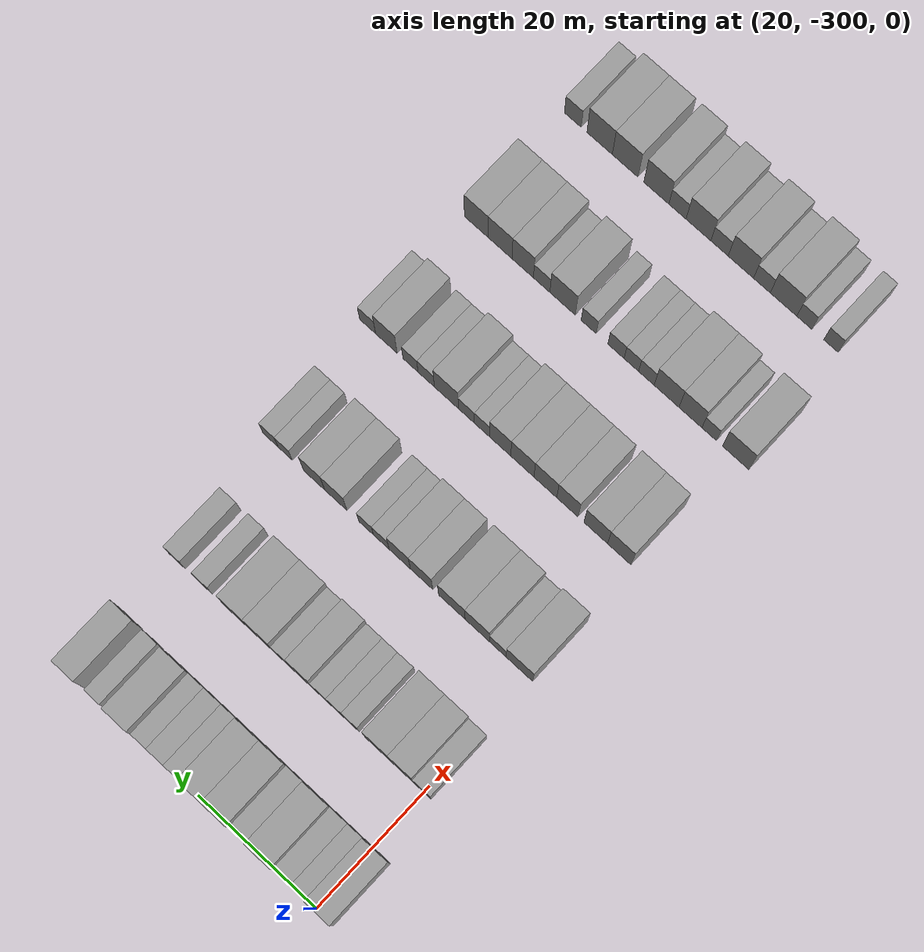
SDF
<sdf version="1.6">
 <world name="default">
  <model name="building_13">
   <static>1</static>
   <pose>25.0000 -300.7905 0 0.000000 0.000000 0.000000</pose>
   <link name="link">
    <pose>0 0 4.50 0 0 0</pose>
    <collision name="collision"><geometry><box><size>10.0000 4.1984 9.0000</size></box></geometry></collision>
    <visual name="visual">
     <cast_shadows>0</cast_shadows>
     <geometry><box><size>10.0000 4.1984 9.0000</size></box></geometry>
     <material>
      <script>
       <uri>model://grey_wall/materials/scripts</uri>
       <uri>model://grey_wall/materials/textures</uri>
       <name>vrc/grey_wall</name>
      </script>
     </material>
    </visual>
   </link>
  </model>
  <model name="building_14">
   <static>1</static>
   <pose>25.0000 -297.3987 0 0.000000 0.000000 0.000000</pose>
   <link name="link">
    <pose>0 0 3.00 0 0 0</pose>
    <collision name="collision"><geometry><box><size>10.0000 2.5852 6.0000</size></box></geometry></collision>
    <visual name="visual">
     <cast_shadows>0</cast_shadows>
     <geometry><box><size>10.0000 2.5852 6.0000</size></box></geometry>
     <material>
      <script>
       <uri>model://grey_wall/materials/scripts</uri>
       <uri>model://grey_wall/materials/textures</uri>
       <name>vrc/grey_wall</name>
      </script>
     </material>
    </visual>
   </link>
  </model>
  <model name="building_15">
   <static>1</static>
   <pose>25.0000 -294.6609 0 0.000000 0.000000 0.000000</pose>
   <link name="link">
    <pose>0 0 3.00 0 0 0</pose>
    <collision name="collision"><geometry><box><size>10.0000 2.8902 6.0000</size></box></geometry></collision>
    <visual name="visual">
     <cast_shadows>0</cast_shadows>
     <geometry><box><size>10.0000 2.8902 6.0000</size></box></geometry>
     <material>
      <script>
       <uri>model://grey_wall/materials/scripts</uri>
       <uri>model://grey_wall/materials/textures</uri>
       <name>vrc/grey_wall</name>
      </script>
     </material>
    </visual>
   </link>
  </model>
  <model name="building_16">
   <static>1</static>
   <pose>25.0000 -291.0888 0 0.000000 0.000000 0.000000</pose>
   <link name="link">
    <pose>0 0 4.50 0 0 0</pose>
    <collision name="collision"><geometry><box><size>10.0000 4.2540 9.0000</size></box></geometry></collision>
    <visual name="visual">
     <cast_shadows>0</cast_shadows>
     <geometry><box><size>10.0000 4.2540 9.0000</size></box></geometry>
     <material>
      <script>
       <uri>model://grey_wall/materials/scripts</uri>
       <uri>model://grey_wall/materials/textures</uri>
       <name>vrc/grey_wall</name>
      </script>
     </material>
    </visual>
   </link>
  </model>
  <model name="building_17">
   <static>1</static>
   <pose>25.0000 -287.4622 0 0.000000 0.000000 0.000000</pose>
   <link name="link">
    <pose>0 0 3.00 0 0 0</pose>
    <collision name="collision"><geometry><box><size>10.0000 2.9994 6.0000</size></box></geometry></collision>
    <visual name="visual">
     <cast_shadows>0</cast_shadows>
     <geometry><box><size>10.0000 2.9994 6.0000</size></box></geometry>
     <material>
      <script>
       <uri>model://grey_wall/materials/scripts</uri>
       <uri>model://grey_wall/materials/textures</uri>
       <name>vrc/grey_wall</name>
      </script>
     </material>
    </visual>
   </link>
  </model>
  <model name="building_18">
   <static>1</static>
   <pose>25.0000 -283.9113 0 0.000000 0.000000 0.000000</pose>
   <link name="link">
    <pose>0 0 4.50 0 0 0</pose>
    <collision name="collision"><geometry><box><size>10.0000 4.1024 9.0000</size></box></geometry></collision>
    <visual name="visual">
     <cast_shadows>0</cast_shadows>
     <geometry><box><size>10.0000 4.1024 9.0000</size></box></geometry>
     <material>
      <script>
       <uri>model://grey_wall/materials/scripts</uri>
       <uri>model://grey_wall/materials/textures</uri>
       <name>vrc/grey_wall</name>
      </script>
     </material>
    </visual>
   </link>
  </model>
  <model name="building_19">
   <static>1</static>
   <pose>25.0000 -279.8644 0 0.000000 0.000000 0.000000</pose>
   <link name="link">
    <pose>0 0 4.50 0 0 0</pose>
    <collision name="collision"><geometry><box><size>10.0000 3.9914 9.0000</size></box></geometry></collision>
    <visual name="visual">
     <cast_shadows>0</cast_shadows>
     <geometry><box><size>10.0000 3.9914 9.0000</size></box></geometry>
     <material>
      <script>
       <uri>model://grey_wall/materials/scripts</uri>
       <uri>model://grey_wall/materials/textures</uri>
       <name>vrc/grey_wall</name>
      </script>
     </material>
    </visual>
   </link>
  </model>
  <model name="building_20">
   <static>1</static>
   <pose>25.0000 -276.5070 0 0.000000 0.000000 0.000000</pose>
   <link name="link">
    <pose>0 0 3.00 0 0 0</pose>
    <collision name="collision"><geometry><box><size>10.0000 2.7232 6.0000</size></box></geometry></collision>
    <visual name="visual">
     <cast_shadows>0</cast_shadows>
     <geometry><box><size>10.0000 2.7232 6.0000</size></box></geometry>
     <material>
      <script>
       <uri>model://grey_wall/materials/scripts</uri>
       <uri>model://grey_wall/materials/textures</uri>
       <name>vrc/grey_wall</name>
      </script>
     </material>
    </visual>
   </link>
  </model>
  <model name="building_21">
   <static>1</static>
   <pose>25.0000 -273.6886 0 0.000000 0.000000 0.000000</pose>
   <link name="link">
    <pose>0 0 3.00 0 0 0</pose>
    <collision name="collision"><geometry><box><size>10.0000 2.9136 6.0000</size></box></geometry></collision>
    <visual name="visual">
     <cast_shadows>0</cast_shadows>
     <geometry><box><size>10.0000 2.9136 6.0000</size></box></geometry>
     <material>
      <script>
       <uri>model://grey_wall/materials/scripts</uri>
       <uri>model://grey_wall/materials/textures</uri>
       <name>vrc/grey_wall</name>
      </script>
     </material>
    </visual>
   </link>
  </model>
  <model name="building_22">
   <static>1</static>
   <pose>25.0000 -270.9212 0 0.000000 0.000000 0.000000</pose>
   <link name="link">
    <pose>0 0 3.00 0 0 0</pose>
    <collision name="collision"><geometry><box><size>10.0000 2.6211 6.0000</size></box></geometry></collision>
    <visual name="visual">
     <cast_shadows>0</cast_shadows>
     <geometry><box><size>10.0000 2.6211 6.0000</size></box></geometry>
     <material>
      <script>
       <uri>model://grey_wall/materials/scripts</uri>
       <uri>model://grey_wall/materials/textures</uri>
       <name>vrc/grey_wall</name>
      </script>
     </material>
    </visual>
   </link>
  </model>
  <model name="building_23">
   <static>1</static>
   <pose>25.0000 -267.5183 0 0.000000 0.000000 0.000000</pose>
   <link name="link">
    <pose>0 0 4.50 0 0 0</pose>
    <collision name="collision"><geometry><box><size>10.0000 4.1848 9.0000</size></box></geometry></collision>
    <visual name="visual">
     <cast_shadows>0</cast_shadows>
     <geometry><box><size>10.0000 4.1848 9.0000</size></box></geometry>
     <material>
      <script>
       <uri>model://grey_wall/materials/scripts</uri>
       <uri>model://grey_wall/materials/textures</uri>
       <name>vrc/grey_wall</name>
      </script>
     </material>
    </visual>
   </link>
  </model>
  <model name="building_24">
   <static>1</static>
   <pose>25.0000 -263.1053 0 0.000000 0.000000 0.000000</pose>
   <link name="link">
    <pose>0 0 3.00 0 0 0</pose>
    <collision name="collision"><geometry><box><size>10.0000 2.6412 6.0000</size></box></geometry></collision>
    <visual name="visual">
     <cast_shadows>0</cast_shadows>
     <geometry><box><size>10.0000 2.6412 6.0000</size></box></geometry>
     <material>
      <script>
       <uri>model://grey_wall/materials/scripts</uri>
       <uri>model://grey_wall/materials/textures</uri>
       <name>vrc/grey_wall</name>
      </script>
     </material>
    </visual>
   </link>
  </model>
  <model name="building_25">
   <static>1</static>
   <pose>25.0000 -258.9148 0 0.000000 0.000000 0.000000</pose>
   <link name="link">
    <pose>0 0 4.50 0 0 0</pose>
    <collision name="collision"><geometry><box><size>10.0000 3.7397 9.0000</size></box></geometry></collision>
    <visual name="visual">
     <cast_shadows>0</cast_shadows>
     <geometry><box><size>10.0000 3.7397 9.0000</size></box></geometry>
     <material>
      <script>
       <uri>model://grey_wall/materials/scripts</uri>
       <uri>model://grey_wall/materials/textures</uri>
       <name>vrc/grey_wall</name>
      </script>
     </material>
    </visual>
   </link>
  </model>
  <model name="building_182">
   <static>1</static>
   <pose>44.0000 -299.7260 0 0.000000 0.000000 0.000000</pose>
   <link name="link">
    <pose>0 0 3.00 0 0 0</pose>
    <collision name="collision"><geometry><box><size>10.0000 2.9644 6.0000</size></box></geometry></collision>
    <visual name="visual">
     <cast_shadows>0</cast_shadows>
     <geometry><box><size>10.0000 2.9644 6.0000</size></box></geometry>
     <material>
      <script>
       <uri>model://grey_wall/materials/scripts</uri>
       <uri>model://grey_wall/materials/textures</uri>
       <name>vrc/grey_wall</name>
      </script>
     </material>
    </visual>
   </link>
  </model>
  <model name="building_183">
   <static>1</static>
   <pose>44.0000 -296.2830 0 0.000000 0.000000 0.000000</pose>
   <link name="link">
    <pose>0 0 4.50 0 0 0</pose>
    <collision name="collision"><geometry><box><size>10.0000 3.9217 9.0000</size></box></geometry></collision>
    <visual name="visual">
     <cast_shadows>0</cast_shadows>
     <geometry><box><size>10.0000 3.9217 9.0000</size></box></geometry>
     <material>
      <script>
       <uri>model://grey_wall/materials/scripts</uri>
       <uri>model://grey_wall/materials/textures</uri>
       <name>vrc/grey_wall</name>
      </script>
     </material>
    </visual>
   </link>
  </model>
  <model name="building_184">
   <static>1</static>
   <pose>44.0000 -292.2314 0 0.000000 0.000000 0.000000</pose>
   <link name="link">
    <pose>0 0 4.50 0 0 0</pose>
    <collision name="collision"><geometry><box><size>10.0000 4.1815 9.0000</size></box></geometry></collision>
    <visual name="visual">
     <cast_shadows>0</cast_shadows>
     <geometry><box><size>10.0000 4.1815 9.0000</size></box></geometry>
     <material>
      <script>
       <uri>model://grey_wall/materials/scripts</uri>
       <uri>model://grey_wall/materials/textures</uri>
       <name>vrc/grey_wall</name>
      </script>
     </material>
    </visual>
   </link>
  </model>
  <model name="building_185">
   <static>1</static>
   <pose>44.0000 -287.8193 0 0.000000 0.000000 0.000000</pose>
   <link name="link">
    <pose>0 0 3.00 0 0 0</pose>
    <collision name="collision"><geometry><box><size>10.0000 2.6428 6.0000</size></box></geometry></collision>
    <visual name="visual">
     <cast_shadows>0</cast_shadows>
     <geometry><box><size>10.0000 2.6428 6.0000</size></box></geometry>
     <material>
      <script>
       <uri>model://grey_wall/materials/scripts</uri>
       <uri>model://grey_wall/materials/textures</uri>
       <name>vrc/grey_wall</name>
      </script>
     </material>
    </visual>
   </link>
  </model>
  <model name="building_186">
   <static>1</static>
   <pose>44.0000 -285.2266 0 0.000000 0.000000 0.000000</pose>
   <link name="link">
    <pose>0 0 3.00 0 0 0</pose>
    <collision name="collision"><geometry><box><size>10.0000 2.5427 6.0000</size></box></geometry></collision>
    <visual name="visual">
     <cast_shadows>0</cast_shadows>
     <geometry><box><size>10.0000 2.5427 6.0000</size></box></geometry>
     <material>
      <script>
       <uri>model://grey_wall/materials/scripts</uri>
       <uri>model://grey_wall/materials/textures</uri>
       <name>vrc/grey_wall</name>
      </script>
     </material>
    </visual>
   </link>
  </model>
  <model name="building_187">
   <static>1</static>
   <pose>44.0000 -282.6139 0 0.000000 0.000000 0.000000</pose>
   <link name="link">
    <pose>0 0 3.00 0 0 0</pose>
    <collision name="collision"><geometry><box><size>10.0000 2.6825 6.0000</size></box></geometry></collision>
    <visual name="visual">
     <cast_shadows>0</cast_shadows>
     <geometry><box><size>10.0000 2.6825 6.0000</size></box></geometry>
     <material>
      <script>
       <uri>model://grey_wall/materials/scripts</uri>
       <uri>model://grey_wall/materials/textures</uri>
       <name>vrc/grey_wall</name>
      </script>
     </material>
    </visual>
   </link>
  </model>
  <model name="building_188">
   <static>1</static>
   <pose>44.0000 -279.3797 0 0.000000 0.000000 0.000000</pose>
   <link name="link">
    <pose>0 0 4.50 0 0 0</pose>
    <collision name="collision"><geometry><box><size>10.0000 3.7860 9.0000</size></box></geometry></collision>
    <visual name="visual">
     <cast_shadows>0</cast_shadows>
     <geometry><box><size>10.0000 3.7860 9.0000</size></box></geometry>
     <material>
      <script>
       <uri>model://grey_wall/materials/scripts</uri>
       <uri>model://grey_wall/materials/textures</uri>
       <name>vrc/grey_wall</name>
      </script>
     </material>
    </visual>
   </link>
  </model>
  <model name="building_189">
   <static>1</static>
   <pose>44.0000 -276.0984 0 0.000000 0.000000 0.000000</pose>
   <link name="link">
    <pose>0 0 3.00 0 0 0</pose>
    <collision name="collision"><geometry><box><size>10.0000 2.7766 6.0000</size></box></geometry></collision>
    <visual name="visual">
     <cast_shadows>0</cast_shadows>
     <geometry><box><size>10.0000 2.7766 6.0000</size></box></geometry>
     <material>
      <script>
       <uri>model://grey_wall/materials/scripts</uri>
       <uri>model://grey_wall/materials/textures</uri>
       <name>vrc/grey_wall</name>
      </script>
     </material>
    </visual>
   </link>
  </model>
  <model name="building_190">
   <static>1</static>
   <pose>44.0000 -272.5750 0 0.000000 0.000000 0.000000</pose>
   <link name="link">
    <pose>0 0 4.50 0 0 0</pose>
    <collision name="collision"><geometry><box><size>10.0000 4.2703 9.0000</size></box></geometry></collision>
    <visual name="visual">
     <cast_shadows>0</cast_shadows>
     <geometry><box><size>10.0000 4.2703 9.0000</size></box></geometry>
     <material>
      <script>
       <uri>model://grey_wall/materials/scripts</uri>
       <uri>model://grey_wall/materials/textures</uri>
       <name>vrc/grey_wall</name>
      </script>
     </material>
    </visual>
   </link>
  </model>
  <model name="building_191">
   <static>1</static>
   <pose>44.0000 -268.2742 0 0.000000 0.000000 0.000000</pose>
   <link name="link">
    <pose>0 0 4.50 0 0 0</pose>
    <collision name="collision"><geometry><box><size>10.0000 4.3313 9.0000</size></box></geometry></collision>
    <visual name="visual">
     <cast_shadows>0</cast_shadows>
     <geometry><box><size>10.0000 4.3313 9.0000</size></box></geometry>
     <material>
      <script>
       <uri>model://grey_wall/materials/scripts</uri>
       <uri>model://grey_wall/materials/textures</uri>
       <name>vrc/grey_wall</name>
      </script>
     </material>
    </visual>
   </link>
  </model>
  <model name="building_192">
   <static>1</static>
   <pose>44.0000 -262.7635 0 0.000000 0.000000 0.000000</pose>
   <link name="link">
    <pose>0 0 3.00 0 0 0</pose>
    <collision name="collision"><geometry><box><size>10.0000 2.6901 6.0000</size></box></geometry></collision>
    <visual name="visual">
     <cast_shadows>0</cast_shadows>
     <geometry><box><size>10.0000 2.6901 6.0000</size></box></geometry>
     <material>
      <script>
       <uri>model://grey_wall/materials/scripts</uri>
       <uri>model://grey_wall/materials/textures</uri>
       <name>vrc/grey_wall</name>
      </script>
     </material>
    </visual>
   </link>
  </model>
  <model name="building_193">
   <static>1</static>
   <pose>44.0000 -258.0133 0 0.000000 0.000000 0.000000</pose>
   <link name="link">
    <pose>0 0 3.00 0 0 0</pose>
    <collision name="collision"><geometry><box><size>10.0000 2.8103 6.0000</size></box></geometry></collision>
    <visual name="visual">
     <cast_shadows>0</cast_shadows>
     <geometry><box><size>10.0000 2.8103 6.0000</size></box></geometry>
     <material>
      <script>
       <uri>model://grey_wall/materials/scripts</uri>
       <uri>model://grey_wall/materials/textures</uri>
       <name>vrc/grey_wall</name>
      </script>
     </material>
    </visual>
   </link>
  </model>
  <model name="building_359">
   <static>1</static>
   <pose>63.0000 -298.3447 0 0.000000 0.000000 0.000000</pose>
   <link name="link">
    <pose>0 0 4.50 0 0 0</pose>
    <collision name="collision"><geometry><box><size>10.0000 4.4631 9.0000</size></box></geometry></collision>
    <visual name="visual">
     <cast_shadows>0</cast_shadows>
     <geometry><box><size>10.0000 4.4631 9.0000</size></box></geometry>
     <material>
      <script>
       <uri>model://grey_wall/materials/scripts</uri>
       <uri>model://grey_wall/materials/textures</uri>
       <name>vrc/grey_wall</name>
      </script>
     </material>
    </visual>
   </link>
  </model>
  <model name="building_360">
   <static>1</static>
   <pose>63.0000 -294.7150 0 0.000000 0.000000 0.000000</pose>
   <link name="link">
    <pose>0 0 3.00 0 0 0</pose>
    <collision name="collision"><geometry><box><size>10.0000 2.7962 6.0000</size></box></geometry></collision>
    <visual name="visual">
     <cast_shadows>0</cast_shadows>
     <geometry><box><size>10.0000 2.7962 6.0000</size></box></geometry>
     <material>
      <script>
       <uri>model://grey_wall/materials/scripts</uri>
       <uri>model://grey_wall/materials/textures</uri>
       <name>vrc/grey_wall</name>
      </script>
     </material>
    </visual>
   </link>
  </model>
  <model name="building_361">
   <static>1</static>
   <pose>63.0000 -291.2730 0 0.000000 0.000000 0.000000</pose>
   <link name="link">
    <pose>0 0 4.50 0 0 0</pose>
    <collision name="collision"><geometry><box><size>10.0000 4.0878 9.0000</size></box></geometry></collision>
    <visual name="visual">
     <cast_shadows>0</cast_shadows>
     <geometry><box><size>10.0000 4.0878 9.0000</size></box></geometry>
     <material>
      <script>
       <uri>model://grey_wall/materials/scripts</uri>
       <uri>model://grey_wall/materials/textures</uri>
       <name>vrc/grey_wall</name>
      </script>
     </material>
    </visual>
   </link>
  </model>
  <model name="building_362">
   <static>1</static>
   <pose>63.0000 -286.9962 0 0.000000 0.000000 0.000000</pose>
   <link name="link">
    <pose>0 0 4.50 0 0 0</pose>
    <collision name="collision"><geometry><box><size>10.0000 4.4658 9.0000</size></box></geometry></collision>
    <visual name="visual">
     <cast_shadows>0</cast_shadows>
     <geometry><box><size>10.0000 4.4658 9.0000</size></box></geometry>
     <material>
      <script>
       <uri>model://grey_wall/materials/scripts</uri>
       <uri>model://grey_wall/materials/textures</uri>
       <name>vrc/grey_wall</name>
      </script>
     </material>
    </visual>
   </link>
  </model>
  <model name="building_363">
   <static>1</static>
   <pose>63.0000 -281.8577 0 0.000000 0.000000 0.000000</pose>
   <link name="link">
    <pose>0 0 4.50 0 0 0</pose>
    <collision name="collision"><geometry><box><size>10.0000 3.8113 9.0000</size></box></geometry></collision>
    <visual name="visual">
     <cast_shadows>0</cast_shadows>
     <geometry><box><size>10.0000 3.8113 9.0000</size></box></geometry>
     <material>
      <script>
       <uri>model://grey_wall/materials/scripts</uri>
       <uri>model://grey_wall/materials/textures</uri>
       <name>vrc/grey_wall</name>
      </script>
     </material>
    </visual>
   </link>
  </model>
  <model name="building_364">
   <static>1</static>
   <pose>63.0000 -278.1359 0 0.000000 0.000000 0.000000</pose>
   <link name="link">
    <pose>0 0 4.50 0 0 0</pose>
    <collision name="collision"><geometry><box><size>10.0000 3.6322 9.0000</size></box></geometry></collision>
    <visual name="visual">
     <cast_shadows>0</cast_shadows>
     <geometry><box><size>10.0000 3.6322 9.0000</size></box></geometry>
     <material>
      <script>
       <uri>model://grey_wall/materials/scripts</uri>
       <uri>model://grey_wall/materials/textures</uri>
       <name>vrc/grey_wall</name>
      </script>
     </material>
    </visual>
   </link>
  </model>
  <model name="building_365">
   <static>1</static>
   <pose>63.0000 -274.9928 0 0.000000 0.000000 0.000000</pose>
   <link name="link">
    <pose>0 0 3.00 0 0 0</pose>
    <collision name="collision"><geometry><box><size>10.0000 2.6540 6.0000</size></box></geometry></collision>
    <visual name="visual">
     <cast_shadows>0</cast_shadows>
     <geometry><box><size>10.0000 2.6540 6.0000</size></box></geometry>
     <material>
      <script>
       <uri>model://grey_wall/materials/scripts</uri>
       <uri>model://grey_wall/materials/textures</uri>
       <name>vrc/grey_wall</name>
      </script>
     </material>
    </visual>
   </link>
  </model>
  <model name="building_366">
   <static>1</static>
   <pose>63.0000 -272.3990 0 0.000000 0.000000 0.000000</pose>
   <link name="link">
    <pose>0 0 3.00 0 0 0</pose>
    <collision name="collision"><geometry><box><size>10.0000 2.5335 6.0000</size></box></geometry></collision>
    <visual name="visual">
     <cast_shadows>0</cast_shadows>
     <geometry><box><size>10.0000 2.5335 6.0000</size></box></geometry>
     <material>
      <script>
       <uri>model://grey_wall/materials/scripts</uri>
       <uri>model://grey_wall/materials/textures</uri>
       <name>vrc/grey_wall</name>
      </script>
     </material>
    </visual>
   </link>
  </model>
  <model name="building_367">
   <static>1</static>
   <pose>63.0000 -267.2105 0 0.000000 0.000000 0.000000</pose>
   <link name="link">
    <pose>0 0 4.50 0 0 0</pose>
    <collision name="collision"><geometry><box><size>10.0000 3.8435 9.0000</size></box></geometry></collision>
    <visual name="visual">
     <cast_shadows>0</cast_shadows>
     <geometry><box><size>10.0000 3.8435 9.0000</size></box></geometry>
     <material>
      <script>
       <uri>model://grey_wall/materials/scripts</uri>
       <uri>model://grey_wall/materials/textures</uri>
       <name>vrc/grey_wall</name>
      </script>
     </material>
    </visual>
   </link>
  </model>
  <model name="building_368">
   <static>1</static>
   <pose>63.0000 -263.4780 0 0.000000 0.000000 0.000000</pose>
   <link name="link">
    <pose>0 0 4.50 0 0 0</pose>
    <collision name="collision"><geometry><box><size>10.0000 3.6215 9.0000</size></box></geometry></collision>
    <visual name="visual">
     <cast_shadows>0</cast_shadows>
     <geometry><box><size>10.0000 3.6215 9.0000</size></box></geometry>
     <material>
      <script>
       <uri>model://grey_wall/materials/scripts</uri>
       <uri>model://grey_wall/materials/textures</uri>
       <name>vrc/grey_wall</name>
      </script>
     </material>
    </visual>
   </link>
  </model>
  <model name="building_369">
   <static>1</static>
   <pose>63.0000 -258.4417 0 0.000000 0.000000 0.000000</pose>
   <link name="link">
    <pose>0 0 3.00 0 0 0</pose>
    <collision name="collision"><geometry><box><size>10.0000 2.4513 6.0000</size></box></geometry></collision>
    <visual name="visual">
     <cast_shadows>0</cast_shadows>
     <geometry><box><size>10.0000 2.4513 6.0000</size></box></geometry>
     <material>
      <script>
       <uri>model://grey_wall/materials/scripts</uri>
       <uri>model://grey_wall/materials/textures</uri>
       <name>vrc/grey_wall</name>
      </script>
     </material>
    </visual>
   </link>
  </model>
  <model name="building_370">
   <static>1</static>
   <pose>63.0000 -255.8940 0 0.000000 0.000000 0.000000</pose>
   <link name="link">
    <pose>0 0 3.00 0 0 0</pose>
    <collision name="collision"><geometry><box><size>10.0000 2.6442 6.0000</size></box></geometry></collision>
    <visual name="visual">
     <cast_shadows>0</cast_shadows>
     <geometry><box><size>10.0000 2.6442 6.0000</size></box></geometry>
     <material>
      <script>
       <uri>model://grey_wall/materials/scripts</uri>
       <uri>model://grey_wall/materials/textures</uri>
       <name>vrc/grey_wall</name>
      </script>
     </material>
    </visual>
   </link>
  </model>
  <model name="building_532">
   <static>1</static>
   <pose>82.0000 -297.7751 0 0.000000 0.000000 0.000000</pose>
   <link name="link">
    <pose>0 0 4.50 0 0 0</pose>
    <collision name="collision"><geometry><box><size>10.0000 3.9373 9.0000</size></box></geometry></collision>
    <visual name="visual">
     <cast_shadows>0</cast_shadows>
     <geometry><box><size>10.0000 3.9373 9.0000</size></box></geometry>
     <material>
      <script>
       <uri>model://grey_wall/materials/scripts</uri>
       <uri>model://grey_wall/materials/textures</uri>
       <name>vrc/grey_wall</name>
      </script>
     </material>
    </visual>
   </link>
  </model>
  <model name="building_533">
   <static>1</static>
   <pose>82.0000 -293.8197 0 0.000000 0.000000 0.000000</pose>
   <link name="link">
    <pose>0 0 4.50 0 0 0</pose>
    <collision name="collision"><geometry><box><size>10.0000 3.9734 9.0000</size></box></geometry></collision>
    <visual name="visual">
     <cast_shadows>0</cast_shadows>
     <geometry><box><size>10.0000 3.9734 9.0000</size></box></geometry>
     <material>
      <script>
       <uri>model://grey_wall/materials/scripts</uri>
       <uri>model://grey_wall/materials/textures</uri>
       <name>vrc/grey_wall</name>
      </script>
     </material>
    </visual>
   </link>
  </model>
  <model name="building_534">
   <static>1</static>
   <pose>82.0000 -289.0314 0 0.000000 0.000000 0.000000</pose>
   <link name="link">
    <pose>0 0 4.50 0 0 0</pose>
    <collision name="collision"><geometry><box><size>10.0000 3.6031 9.0000</size></box></geometry></collision>
    <visual name="visual">
     <cast_shadows>0</cast_shadows>
     <geometry><box><size>10.0000 3.6031 9.0000</size></box></geometry>
     <material>
      <script>
       <uri>model://grey_wall/materials/scripts</uri>
       <uri>model://grey_wall/materials/textures</uri>
       <name>vrc/grey_wall</name>
      </script>
     </material>
    </visual>
   </link>
  </model>
  <model name="building_535">
   <static>1</static>
   <pose>82.0000 -285.2981 0 0.000000 0.000000 0.000000</pose>
   <link name="link">
    <pose>0 0 4.50 0 0 0</pose>
    <collision name="collision"><geometry><box><size>10.0000 3.8634 9.0000</size></box></geometry></collision>
    <visual name="visual">
     <cast_shadows>0</cast_shadows>
     <geometry><box><size>10.0000 3.8634 9.0000</size></box></geometry>
     <material>
      <script>
       <uri>model://grey_wall/materials/scripts</uri>
       <uri>model://grey_wall/materials/textures</uri>
       <name>vrc/grey_wall</name>
      </script>
     </material>
    </visual>
   </link>
  </model>
  <model name="building_536">
   <static>1</static>
   <pose>82.0000 -281.3900 0 0.000000 0.000000 0.000000</pose>
   <link name="link">
    <pose>0 0 4.50 0 0 0</pose>
    <collision name="collision"><geometry><box><size>10.0000 3.9528 9.0000</size></box></geometry></collision>
    <visual name="visual">
     <cast_shadows>0</cast_shadows>
     <geometry><box><size>10.0000 3.9528 9.0000</size></box></geometry>
     <material>
      <script>
       <uri>model://grey_wall/materials/scripts</uri>
       <uri>model://grey_wall/materials/textures</uri>
       <name>vrc/grey_wall</name>
      </script>
     </material>
    </visual>
   </link>
  </model>
  <model name="building_537">
   <static>1</static>
   <pose>82.0000 -277.6038 0 0.000000 0.000000 0.000000</pose>
   <link name="link">
    <pose>0 0 4.50 0 0 0</pose>
    <collision name="collision"><geometry><box><size>10.0000 3.6196 9.0000</size></box></geometry></collision>
    <visual name="visual">
     <cast_shadows>0</cast_shadows>
     <geometry><box><size>10.0000 3.6196 9.0000</size></box></geometry>
     <material>
      <script>
       <uri>model://grey_wall/materials/scripts</uri>
       <uri>model://grey_wall/materials/textures</uri>
       <name>vrc/grey_wall</name>
      </script>
     </material>
    </visual>
   </link>
  </model>
  <model name="building_538">
   <static>1</static>
   <pose>82.0000 -274.4913 0 0.000000 0.000000 0.000000</pose>
   <link name="link">
    <pose>0 0 3.00 0 0 0</pose>
    <collision name="collision"><geometry><box><size>10.0000 2.6055 6.0000</size></box></geometry></collision>
    <visual name="visual">
     <cast_shadows>0</cast_shadows>
     <geometry><box><size>10.0000 2.6055 6.0000</size></box></geometry>
     <material>
      <script>
       <uri>model://grey_wall/materials/scripts</uri>
       <uri>model://grey_wall/materials/textures</uri>
       <name>vrc/grey_wall</name>
      </script>
     </material>
    </visual>
   </link>
  </model>
  <model name="building_539">
   <static>1</static>
   <pose>82.0000 -271.8295 0 0.000000 0.000000 0.000000</pose>
   <link name="link">
    <pose>0 0 3.00 0 0 0</pose>
    <collision name="collision"><geometry><box><size>10.0000 2.7180 6.0000</size></box></geometry></collision>
    <visual name="visual">
     <cast_shadows>0</cast_shadows>
     <geometry><box><size>10.0000 2.7180 6.0000</size></box></geometry>
     <material>
      <script>
       <uri>model://grey_wall/materials/scripts</uri>
       <uri>model://grey_wall/materials/textures</uri>
       <name>vrc/grey_wall</name>
      </script>
     </material>
    </visual>
   </link>
  </model>
  <model name="building_540">
   <static>1</static>
   <pose>82.0000 -268.3888 0 0.000000 0.000000 0.000000</pose>
   <link name="link">
    <pose>0 0 4.50 0 0 0</pose>
    <collision name="collision"><geometry><box><size>10.0000 4.1634 9.0000</size></box></geometry></collision>
    <visual name="visual">
     <cast_shadows>0</cast_shadows>
     <geometry><box><size>10.0000 4.1634 9.0000</size></box></geometry>
     <material>
      <script>
       <uri>model://grey_wall/materials/scripts</uri>
       <uri>model://grey_wall/materials/textures</uri>
       <name>vrc/grey_wall</name>
      </script>
     </material>
    </visual>
   </link>
  </model>
  <model name="building_541">
   <static>1</static>
   <pose>82.0000 -264.8963 0 0.000000 0.000000 0.000000</pose>
   <link name="link">
    <pose>0 0 3.00 0 0 0</pose>
    <collision name="collision"><geometry><box><size>10.0000 2.8217 6.0000</size></box></geometry></collision>
    <visual name="visual">
     <cast_shadows>0</cast_shadows>
     <geometry><box><size>10.0000 2.8217 6.0000</size></box></geometry>
     <material>
      <script>
       <uri>model://grey_wall/materials/scripts</uri>
       <uri>model://grey_wall/materials/textures</uri>
       <name>vrc/grey_wall</name>
      </script>
     </material>
    </visual>
   </link>
  </model>
  <model name="building_542">
   <static>1</static>
   <pose>82.0000 -262.1801 0 0.000000 0.000000 0.000000</pose>
   <link name="link">
    <pose>0 0 3.00 0 0 0</pose>
    <collision name="collision"><geometry><box><size>10.0000 2.6108 6.0000</size></box></geometry></collision>
    <visual name="visual">
     <cast_shadows>0</cast_shadows>
     <geometry><box><size>10.0000 2.6108 6.0000</size></box></geometry>
     <material>
      <script>
       <uri>model://grey_wall/materials/scripts</uri>
       <uri>model://grey_wall/materials/textures</uri>
       <name>vrc/grey_wall</name>
      </script>
     </material>
    </visual>
   </link>
  </model>
  <model name="building_543">
   <static>1</static>
   <pose>82.0000 -257.9991 0 0.000000 0.000000 0.000000</pose>
   <link name="link">
    <pose>0 0 4.50 0 0 0</pose>
    <collision name="collision"><geometry><box><size>10.0000 3.7512 9.0000</size></box></geometry></collision>
    <visual name="visual">
     <cast_shadows>0</cast_shadows>
     <geometry><box><size>10.0000 3.7512 9.0000</size></box></geometry>
     <material>
      <script>
       <uri>model://grey_wall/materials/scripts</uri>
       <uri>model://grey_wall/materials/textures</uri>
       <name>vrc/grey_wall</name>
      </script>
     </material>
    </visual>
   </link>
  </model>
  <model name="building_544">
   <static>1</static>
   <pose>82.0000 -254.7356 0 0.000000 0.000000 0.000000</pose>
   <link name="link">
    <pose>0 0 3.00 0 0 0</pose>
    <collision name="collision"><geometry><box><size>10.0000 2.7759 6.0000</size></box></geometry></collision>
    <visual name="visual">
     <cast_shadows>0</cast_shadows>
     <geometry><box><size>10.0000 2.7759 6.0000</size></box></geometry>
     <material>
      <script>
       <uri>model://grey_wall/materials/scripts</uri>
       <uri>model://grey_wall/materials/textures</uri>
       <name>vrc/grey_wall</name>
      </script>
     </material>
    </visual>
   </link>
  </model>
  <model name="building_716">
   <static>1</static>
   <pose>101.0000 -300.2934 0 0.000000 0.000000 0.000000</pose>
   <link name="link">
    <pose>0 0 4.50 0 0 0</pose>
    <collision name="collision"><geometry><box><size>10.0000 4.4575 9.0000</size></box></geometry></collision>
    <visual name="visual">
     <cast_shadows>0</cast_shadows>
     <geometry><box><size>10.0000 4.4575 9.0000</size></box></geometry>
     <material>
      <script>
       <uri>model://grey_wall/materials/scripts</uri>
       <uri>model://grey_wall/materials/textures</uri>
       <name>vrc/grey_wall</name>
      </script>
     </material>
    </visual>
   </link>
  </model>
  <model name="building_717">
   <static>1</static>
   <pose>101.0000 -295.8396 0 0.000000 0.000000 0.000000</pose>
   <link name="link">
    <pose>0 0 3.00 0 0 0</pose>
    <collision name="collision"><geometry><box><size>10.0000 2.4501 6.0000</size></box></geometry></collision>
    <visual name="visual">
     <cast_shadows>0</cast_shadows>
     <geometry><box><size>10.0000 2.4501 6.0000</size></box></geometry>
     <material>
      <script>
       <uri>model://grey_wall/materials/scripts</uri>
       <uri>model://grey_wall/materials/textures</uri>
       <name>vrc/grey_wall</name>
      </script>
     </material>
    </visual>
   </link>
  </model>
  <model name="building_718">
   <static>1</static>
   <pose>101.0000 -292.6802 0 0.000000 0.000000 0.000000</pose>
   <link name="link">
    <pose>0 0 4.50 0 0 0</pose>
    <collision name="collision"><geometry><box><size>10.0000 3.8687 9.0000</size></box></geometry></collision>
    <visual name="visual">
     <cast_shadows>0</cast_shadows>
     <geometry><box><size>10.0000 3.8687 9.0000</size></box></geometry>
     <material>
      <script>
       <uri>model://grey_wall/materials/scripts</uri>
       <uri>model://grey_wall/materials/textures</uri>
       <name>vrc/grey_wall</name>
      </script>
     </material>
    </visual>
   </link>
  </model>
  <model name="building_719">
   <static>1</static>
   <pose>101.0000 -288.6435 0 0.000000 0.000000 0.000000</pose>
   <link name="link">
    <pose>0 0 4.50 0 0 0</pose>
    <collision name="collision"><geometry><box><size>10.0000 4.2046 9.0000</size></box></geometry></collision>
    <visual name="visual">
     <cast_shadows>0</cast_shadows>
     <geometry><box><size>10.0000 4.2046 9.0000</size></box></geometry>
     <material>
      <script>
       <uri>model://grey_wall/materials/scripts</uri>
       <uri>model://grey_wall/materials/textures</uri>
       <name>vrc/grey_wall</name>
      </script>
     </material>
    </visual>
   </link>
  </model>
  <model name="building_720">
   <static>1</static>
   <pose>101.0000 -285.2169 0 0.000000 0.000000 0.000000</pose>
   <link name="link">
    <pose>0 0 3.00 0 0 0</pose>
    <collision name="collision"><geometry><box><size>10.0000 2.6486 6.0000</size></box></geometry></collision>
    <visual name="visual">
     <cast_shadows>0</cast_shadows>
     <geometry><box><size>10.0000 2.6486 6.0000</size></box></geometry>
     <material>
      <script>
       <uri>model://grey_wall/materials/scripts</uri>
       <uri>model://grey_wall/materials/textures</uri>
       <name>vrc/grey_wall</name>
      </script>
     </material>
    </visual>
   </link>
  </model>
  <model name="building_721">
   <static>1</static>
   <pose>101.0000 -282.6581 0 0.000000 0.000000 0.000000</pose>
   <link name="link">
    <pose>0 0 3.00 0 0 0</pose>
    <collision name="collision"><geometry><box><size>10.0000 2.4690 6.0000</size></box></geometry></collision>
    <visual name="visual">
     <cast_shadows>0</cast_shadows>
     <geometry><box><size>10.0000 2.4690 6.0000</size></box></geometry>
     <material>
      <script>
       <uri>model://grey_wall/materials/scripts</uri>
       <uri>model://grey_wall/materials/textures</uri>
       <name>vrc/grey_wall</name>
      </script>
     </material>
    </visual>
   </link>
  </model>
  <model name="building_722">
   <static>1</static>
   <pose>101.0000 -280.0353 0 0.000000 0.000000 0.000000</pose>
   <link name="link">
    <pose>0 0 3.00 0 0 0</pose>
    <collision name="collision"><geometry><box><size>10.0000 2.7766 6.0000</size></box></geometry></collision>
    <visual name="visual">
     <cast_shadows>0</cast_shadows>
     <geometry><box><size>10.0000 2.7766 6.0000</size></box></geometry>
     <material>
      <script>
       <uri>model://grey_wall/materials/scripts</uri>
       <uri>model://grey_wall/materials/textures</uri>
       <name>vrc/grey_wall</name>
      </script>
     </material>
    </visual>
   </link>
  </model>
  <model name="building_723">
   <static>1</static>
   <pose>101.0000 -275.3551 0 0.000000 0.000000 0.000000</pose>
   <link name="link">
    <pose>0 0 3.00 0 0 0</pose>
    <collision name="collision"><geometry><box><size>10.0000 2.5836 6.0000</size></box></geometry></collision>
    <visual name="visual">
     <cast_shadows>0</cast_shadows>
     <geometry><box><size>10.0000 2.5836 6.0000</size></box></geometry>
     <material>
      <script>
       <uri>model://grey_wall/materials/scripts</uri>
       <uri>model://grey_wall/materials/textures</uri>
       <name>vrc/grey_wall</name>
      </script>
     </material>
    </visual>
   </link>
  </model>
  <model name="building_724">
   <static>1</static>
   <pose>101.0000 -270.8742 0 0.000000 0.000000 0.000000</pose>
   <link name="link">
    <pose>0 0 4.50 0 0 0</pose>
    <collision name="collision"><geometry><box><size>10.0000 4.3781 9.0000</size></box></geometry></collision>
    <visual name="visual">
     <cast_shadows>0</cast_shadows>
     <geometry><box><size>10.0000 4.3781 9.0000</size></box></geometry>
     <material>
      <script>
       <uri>model://grey_wall/materials/scripts</uri>
       <uri>model://grey_wall/materials/textures</uri>
       <name>vrc/grey_wall</name>
      </script>
     </material>
    </visual>
   </link>
  </model>
  <model name="building_725">
   <static>1</static>
   <pose>101.0000 -267.2647 0 0.000000 0.000000 0.000000</pose>
   <link name="link">
    <pose>0 0 3.00 0 0 0</pose>
    <collision name="collision"><geometry><box><size>10.0000 2.8409 6.0000</size></box></geometry></collision>
    <visual name="visual">
     <cast_shadows>0</cast_shadows>
     <geometry><box><size>10.0000 2.8409 6.0000</size></box></geometry>
     <material>
      <script>
       <uri>model://grey_wall/materials/scripts</uri>
       <uri>model://grey_wall/materials/textures</uri>
       <name>vrc/grey_wall</name>
      </script>
     </material>
    </visual>
   </link>
  </model>
  <model name="building_726">
   <static>1</static>
   <pose>101.0000 -263.9945 0 0.000000 0.000000 0.000000</pose>
   <link name="link">
    <pose>0 0 4.50 0 0 0</pose>
    <collision name="collision"><geometry><box><size>10.0000 3.6994 9.0000</size></box></geometry></collision>
    <visual name="visual">
     <cast_shadows>0</cast_shadows>
     <geometry><box><size>10.0000 3.6994 9.0000</size></box></geometry>
     <material>
      <script>
       <uri>model://grey_wall/materials/scripts</uri>
       <uri>model://grey_wall/materials/textures</uri>
       <name>vrc/grey_wall</name>
      </script>
     </material>
    </visual>
   </link>
  </model>
  <model name="building_727">
   <static>1</static>
   <pose>101.0000 -260.0580 0 0.000000 0.000000 0.000000</pose>
   <link name="link">
    <pose>0 0 4.50 0 0 0</pose>
    <collision name="collision"><geometry><box><size>10.0000 4.1736 9.0000</size></box></geometry></collision>
    <visual name="visual">
     <cast_shadows>0</cast_shadows>
     <geometry><box><size>10.0000 4.1736 9.0000</size></box></geometry>
     <material>
      <script>
       <uri>model://grey_wall/materials/scripts</uri>
       <uri>model://grey_wall/materials/textures</uri>
       <name>vrc/grey_wall</name>
      </script>
     </material>
    </visual>
   </link>
  </model>
  <model name="building_728">
   <static>1</static>
   <pose>101.0000 -255.9211 0 0.000000 0.000000 0.000000</pose>
   <link name="link">
    <pose>0 0 4.50 0 0 0</pose>
    <collision name="collision"><geometry><box><size>10.0000 4.1003 9.0000</size></box></geometry></collision>
    <visual name="visual">
     <cast_shadows>0</cast_shadows>
     <geometry><box><size>10.0000 4.1003 9.0000</size></box></geometry>
     <material>
      <script>
       <uri>model://grey_wall/materials/scripts</uri>
       <uri>model://grey_wall/materials/textures</uri>
       <name>vrc/grey_wall</name>
      </script>
     </material>
    </visual>
   </link>
  </model>
  <model name="building_895">
   <static>1</static>
   <pose>120.0000 -299.5846 0 0.000000 0.000000 0.000000</pose>
   <link name="link">
    <pose>0 0 3.00 0 0 0</pose>
    <collision name="collision"><geometry><box><size>10.0000 2.4263 6.0000</size></box></geometry></collision>
    <visual name="visual">
     <cast_shadows>0</cast_shadows>
     <geometry><box><size>10.0000 2.4263 6.0000</size></box></geometry>
     <material>
      <script>
       <uri>model://grey_wall/materials/scripts</uri>
       <uri>model://grey_wall/materials/textures</uri>
       <name>vrc/grey_wall</name>
      </script>
     </material>
    </visual>
   </link>
  </model>
  <model name="building_896">
   <static>1</static>
   <pose>120.0000 -295.1014 0 0.000000 0.000000 0.000000</pose>
   <link name="link">
    <pose>0 0 3.00 0 0 0</pose>
    <collision name="collision"><geometry><box><size>10.0000 2.5401 6.0000</size></box></geometry></collision>
    <visual name="visual">
     <cast_shadows>0</cast_shadows>
     <geometry><box><size>10.0000 2.5401 6.0000</size></box></geometry>
     <material>
      <script>
       <uri>model://grey_wall/materials/scripts</uri>
       <uri>model://grey_wall/materials/textures</uri>
       <name>vrc/grey_wall</name>
      </script>
     </material>
    </visual>
   </link>
  </model>
  <model name="building_897">
   <static>1</static>
   <pose>120.0000 -291.5820 0 0.000000 0.000000 0.000000</pose>
   <link name="link">
    <pose>0 0 4.50 0 0 0</pose>
    <collision name="collision"><geometry><box><size>10.0000 4.4987 9.0000</size></box></geometry></collision>
    <visual name="visual">
     <cast_shadows>0</cast_shadows>
     <geometry><box><size>10.0000 4.4987 9.0000</size></box></geometry>
     <material>
      <script>
       <uri>model://grey_wall/materials/scripts</uri>
       <uri>model://grey_wall/materials/textures</uri>
       <name>vrc/grey_wall</name>
      </script>
     </material>
    </visual>
   </link>
  </model>
  <model name="building_898">
   <static>1</static>
   <pose>120.0000 -287.9083 0 0.000000 0.000000 0.000000</pose>
   <link name="link">
    <pose>0 0 3.00 0 0 0</pose>
    <collision name="collision"><geometry><box><size>10.0000 2.8487 6.0000</size></box></geometry></collision>
    <visual name="visual">
     <cast_shadows>0</cast_shadows>
     <geometry><box><size>10.0000 2.8487 6.0000</size></box></geometry>
     <material>
      <script>
       <uri>model://grey_wall/materials/scripts</uri>
       <uri>model://grey_wall/materials/textures</uri>
       <name>vrc/grey_wall</name>
      </script>
     </material>
    </visual>
   </link>
  </model>
  <model name="building_899">
   <static>1</static>
   <pose>120.0000 -284.3229 0 0.000000 0.000000 0.000000</pose>
   <link name="link">
    <pose>0 0 4.50 0 0 0</pose>
    <collision name="collision"><geometry><box><size>10.0000 4.3222 9.0000</size></box></geometry></collision>
    <visual name="visual">
     <cast_shadows>0</cast_shadows>
     <geometry><box><size>10.0000 4.3222 9.0000</size></box></geometry>
     <material>
      <script>
       <uri>model://grey_wall/materials/scripts</uri>
       <uri>model://grey_wall/materials/textures</uri>
       <name>vrc/grey_wall</name>
      </script>
     </material>
    </visual>
   </link>
  </model>
  <model name="building_900">
   <static>1</static>
   <pose>120.0000 -280.6824 0 0.000000 0.000000 0.000000</pose>
   <link name="link">
    <pose>0 0 3.00 0 0 0</pose>
    <collision name="collision"><geometry><box><size>10.0000 2.9588 6.0000</size></box></geometry></collision>
    <visual name="visual">
     <cast_shadows>0</cast_shadows>
     <geometry><box><size>10.0000 2.9588 6.0000</size></box></geometry>
     <material>
      <script>
       <uri>model://grey_wall/materials/scripts</uri>
       <uri>model://grey_wall/materials/textures</uri>
       <name>vrc/grey_wall</name>
      </script>
     </material>
    </visual>
   </link>
  </model>
  <model name="building_901">
   <static>1</static>
   <pose>120.0000 -277.0782 0 0.000000 0.000000 0.000000</pose>
   <link name="link">
    <pose>0 0 4.50 0 0 0</pose>
    <collision name="collision"><geometry><box><size>10.0000 4.2496 9.0000</size></box></geometry></collision>
    <visual name="visual">
     <cast_shadows>0</cast_shadows>
     <geometry><box><size>10.0000 4.2496 9.0000</size></box></geometry>
     <material>
      <script>
       <uri>model://grey_wall/materials/scripts</uri>
       <uri>model://grey_wall/materials/textures</uri>
       <name>vrc/grey_wall</name>
      </script>
     </material>
    </visual>
   </link>
  </model>
  <model name="building_902">
   <static>1</static>
   <pose>120.0000 -273.4758 0 0.000000 0.000000 0.000000</pose>
   <link name="link">
    <pose>0 0 3.00 0 0 0</pose>
    <collision name="collision"><geometry><box><size>10.0000 2.9551 6.0000</size></box></geometry></collision>
    <visual name="visual">
     <cast_shadows>0</cast_shadows>
     <geometry><box><size>10.0000 2.9551 6.0000</size></box></geometry>
     <material>
      <script>
       <uri>model://grey_wall/materials/scripts</uri>
       <uri>model://grey_wall/materials/textures</uri>
       <name>vrc/grey_wall</name>
      </script>
     </material>
    </visual>
   </link>
  </model>
  <model name="building_903">
   <static>1</static>
   <pose>120.0000 -269.8325 0 0.000000 0.000000 0.000000</pose>
   <link name="link">
    <pose>0 0 4.50 0 0 0</pose>
    <collision name="collision"><geometry><box><size>10.0000 4.3317 9.0000</size></box></geometry></collision>
    <visual name="visual">
     <cast_shadows>0</cast_shadows>
     <geometry><box><size>10.0000 4.3317 9.0000</size></box></geometry>
     <material>
      <script>
       <uri>model://grey_wall/materials/scripts</uri>
       <uri>model://grey_wall/materials/textures</uri>
       <name>vrc/grey_wall</name>
      </script>
     </material>
    </visual>
   </link>
  </model>
  <model name="building_904">
   <static>1</static>
   <pose>120.0000 -264.4391 0 0.000000 0.000000 0.000000</pose>
   <link name="link">
    <pose>0 0 4.50 0 0 0</pose>
    <collision name="collision"><geometry><box><size>10.0000 4.4552 9.0000</size></box></geometry></collision>
    <visual name="visual">
     <cast_shadows>0</cast_shadows>
     <geometry><box><size>10.0000 4.4552 9.0000</size></box></geometry>
     <material>
      <script>
       <uri>model://grey_wall/materials/scripts</uri>
       <uri>model://grey_wall/materials/textures</uri>
       <name>vrc/grey_wall</name>
      </script>
     </material>
    </visual>
   </link>
  </model>
  <model name="building_905">
   <static>1</static>
   <pose>120.0000 -260.0016 0 0.000000 0.000000 0.000000</pose>
   <link name="link">
    <pose>0 0 4.50 0 0 0</pose>
    <collision name="collision"><geometry><box><size>10.0000 4.4197 9.0000</size></box></geometry></collision>
    <visual name="visual">
     <cast_shadows>0</cast_shadows>
     <geometry><box><size>10.0000 4.4197 9.0000</size></box></geometry>
     <material>
      <script>
       <uri>model://grey_wall/materials/scripts</uri>
       <uri>model://grey_wall/materials/textures</uri>
       <name>vrc/grey_wall</name>
      </script>
     </material>
    </visual>
   </link>
  </model>
  <model name="building_906">
   <static>1</static>
   <pose>120.0000 -255.3297 0 0.000000 0.000000 0.000000</pose>
   <link name="link">
    <pose>0 0 3.00 0 0 0</pose>
    <collision name="collision"><geometry><box><size>10.0000 2.9242 6.0000</size></box></geometry></collision>
    <visual name="visual">
     <cast_shadows>0</cast_shadows>
     <geometry><box><size>10.0000 2.9242 6.0000</size></box></geometry>
     <material>
      <script>
       <uri>model://grey_wall/materials/scripts</uri>
       <uri>model://grey_wall/materials/textures</uri>
       <name>vrc/grey_wall</name>
      </script>
     </material>
    </visual>
   </link>
  </model>
 </world>
</sdf>
